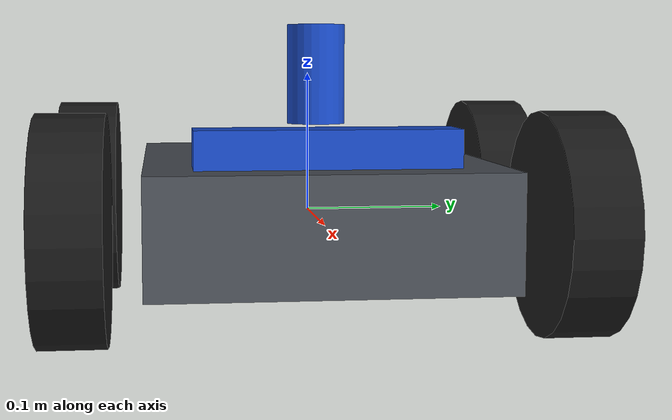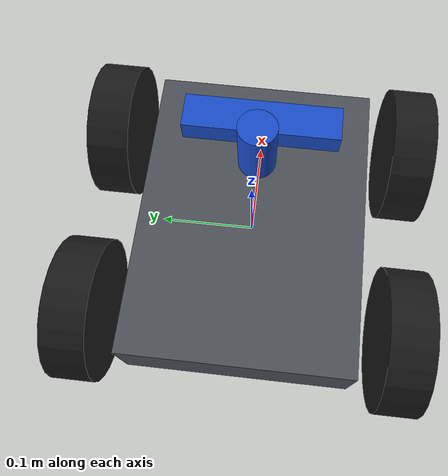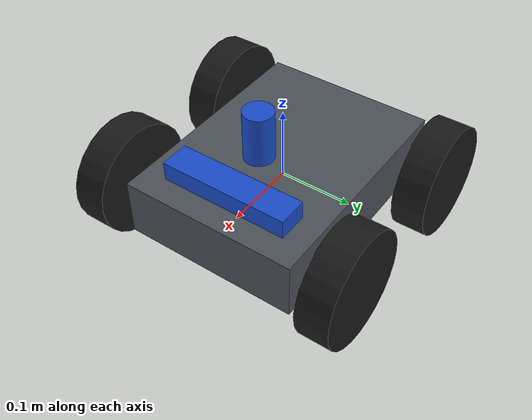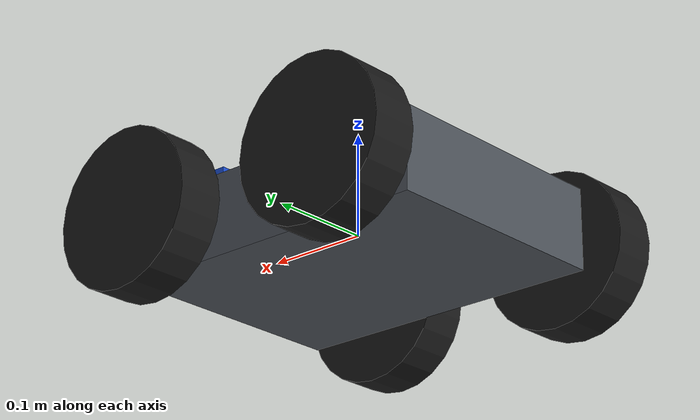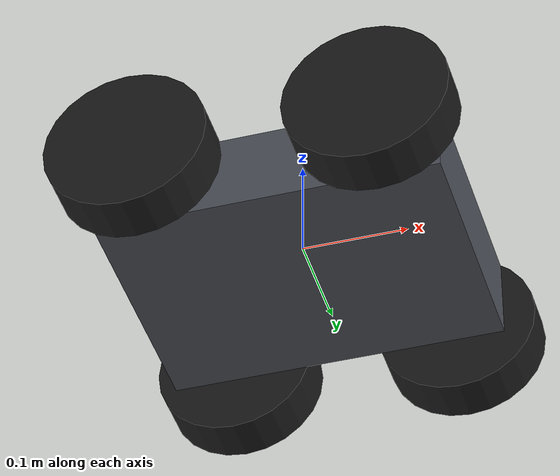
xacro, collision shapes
<?xml version="1.0"?>
<robot name="helios" xmlns:xacro="http://www.ros.org/wiki/xacro">

  <xacro:include filename="$(find helios_description)/urdf/common.xacro"/>
  <xacro:include filename="$(find helios_description)/urdf/base.xacro"/>
  <xacro:include filename="$(find helios_description)/urdf/sensors.xacro"/>

</robot>

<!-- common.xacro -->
<robot xmlns:xacro="http://www.ros.org/wiki/xacro">

  <!-- ===================== Mesh conventions ===================== -->
  <xacro:property name="mesh_scale" value="0.001 0.001 0.001"/>
  <xacro:property name="mesh_rpy"   value="${pi/2} 0 ${pi/2}"/>

  <!-- ===================== Materials ===================== -->
  <material name="chassis_grey"><color rgba="0.30 0.32 0.35 1.0"/></material>
  <material name="wheel_black"><color rgba="0.10 0.10 0.10 1.0"/></material>
  <material name="sensor_blue"><color rgba="0.10 0.30 0.80 1.0"/></material>

</robot>

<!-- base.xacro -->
<robot xmlns:xacro="http://www.ros.org/wiki/xacro">

  <!-- ===================== Parameters ===================== -->
  <xacro:property name="wheel_radius"   value="0.076"/>   <!-- m, 152 mm wheel diameter / 2 -->
  <xacro:property name="wheel_width"    value="0.045"/>   <!-- m, collision cylinder length; estimated, not measured -->
  <xacro:property name="half_wheelbase" value="0.110"/>   <!-- m, front<->rear axle spacing 0.220 / 2 -->
  <xacro:property name="half_track"     value="0.165"/>   <!-- m, left<->right wheel spacing 0.330 / 2 -->

  <!-- Chassis collision box, estimated from the A4WD3 frame. Collision uses a
       box rather than the STL because mesh collision checking costs far more
       and buys nothing at this scale. -->
  <xacro:property name="chassis_length" value="0.320"/>   <!-- m, along x (forward) -->
  <xacro:property name="chassis_width"  value="0.240"/>   <!-- m, along y (left) -->
  <xacro:property name="chassis_height" value="0.0785"/>  <!-- m, along z (up), centred on base_link -->

  <xacro:property name="chassis_mesh_xyz" value="-0.16552 -0.13383 -0.03827"/>
  <xacro:property name="wheelA_mesh_xyz"  value="-0.08398 -0.02833 -0.08436"/>
  <xacro:property name="wheelB_mesh_xyz"  value="-0.08395 -0.02833 -0.08436"/>

  <!-- ===================== base_link (root) ===================== -->
  <link name="base_link">
    <visual>
      <origin xyz="${chassis_mesh_xyz}" rpy="${mesh_rpy}"/>
      <geometry>
        <mesh filename="package://helios_description/meshes/Rover-Chassis.STL" scale="${mesh_scale}"/>
      </geometry>
      <material name="chassis_grey"/>
    </visual>
    <collision>
      <origin xyz="0 0 0" rpy="0 0 0"/>
      <geometry>
        <box size="${chassis_length} ${chassis_width} ${chassis_height}"/>
      </geometry>
    </collision>
  </link>

  <!-- base_link_inertia: KDL doesn't support inertia on the root link, so the
       chassis mass lives here instead (fixed, identity offset from base_link)
       rather than on base_link itself. -->
  <link name="base_link_inertia">
    <inertial>
      <mass value="5.0"/>
      <origin xyz="0 0 0"/>
      <inertia ixx="0.05" ixy="0" ixz="0" iyy="0.08" iyz="0" izz="0.10"/>
    </inertial>
  </link>
  <joint name="base_link_inertia_joint" type="fixed">
    <parent link="base_link"/>
    <child link="base_link_inertia"/>
    <origin xyz="0 0 0" rpy="0 0 0"/>
  </joint>

  <!-- base_footprint: ground projection below base_link (child, so base_link
       keeps a single parent = odom from the odometry node). -->
  <link name="base_footprint"/>
  <joint name="base_footprint_joint" type="fixed">
    <parent link="base_link"/>
    <child link="base_footprint"/>
    <origin xyz="0 0 ${-wheel_radius}" rpy="0 0 0"/>
  </joint>

  <!-- ===================== Wheel macro ===================== -->
  <xacro:macro name="wheel" params="name x y mesh_file mesh_xyz">
    <link name="${name}_wheel">
      <visual>
        <origin xyz="${mesh_xyz}" rpy="${mesh_rpy}"/>
        <geometry>
          <mesh filename="package://helios_description/meshes/${mesh_file}" scale="${mesh_scale}"/>
        </geometry>
        <material name="wheel_black"/>
      </visual>
      <collision>
        <origin xyz="0 0 0" rpy="${pi/2} 0 0"/>
        <geometry>
          <cylinder radius="${wheel_radius}" length="${wheel_width}"/>
        </geometry>
      </collision>
      <inertial>
        <mass value="0.5"/>
        <origin xyz="0 0 0"/>
        <inertia ixx="0.001" ixy="0" ixz="0" iyy="0.001" iyz="0" izz="0.001"/>
      </inertial>
    </link>
    <joint name="${name}_wheel_joint" type="continuous">
      <parent link="base_link"/>
      <child link="${name}_wheel"/>
      <origin xyz="${x} ${y} 0" rpy="0 0 0"/>
      <axis xyz="0 1 0"/>
    </joint>
  </xacro:macro>

  <!-- Corner names match the wheel_odometry node. -->
  <xacro:wheel name="front_left"  x="${half_wheelbase}"  y="${half_track}"
               mesh_file="A4WD3-W-ME-B.STL" mesh_xyz="${wheelA_mesh_xyz}"/>
  <xacro:wheel name="front_right" x="${half_wheelbase}"  y="${-half_track}"
               mesh_file="A4WD3-W-ME-A.STL" mesh_xyz="${wheelB_mesh_xyz}"/>
  <xacro:wheel name="rear_left"   x="${-half_wheelbase}" y="${half_track}"
               mesh_file="A4WD3-W-ME-A.STL" mesh_xyz="${wheelB_mesh_xyz}"/>
  <xacro:wheel name="rear_right"  x="${-half_wheelbase}" y="${-half_track}"
               mesh_file="A4WD3-W-ME-B.STL" mesh_xyz="${wheelA_mesh_xyz}"/>

</robot>

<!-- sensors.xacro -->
<robot xmlns:xacro="http://www.ros.org/wiki/xacro">

  <!-- ===================== ZED 2i ===================== -->
  <link name="zed_camera_link">
    <visual>
      <origin xyz="0.01547 -0.08888 -0.02128" rpy="0 0 ${pi/2}"/>
      <geometry>
        <mesh filename="package://helios_description/meshes/ZED2i.STL" scale="${mesh_scale}"/>
      </geometry>
      <material name="sensor_blue"/>
    </visual>
    <collision>
      <origin xyz="0 0 0" rpy="0 0 0"/>
      <geometry>
        <box size="0.04 0.17525 0.030"/>   <!-- m, ZED 2i body is ~175 mm wide -->
      </geometry>
    </collision>
  </link>
  <joint name="zed_mount_joint" type="fixed">
    <parent link="base_link"/>
    <child link="zed_camera_link"/>
    <origin xyz="0.106 0.0 0.050" rpy="0 0 0"/>
  </joint>

  <!-- ===================== Hokuyo UST-10LX ===================== -->
  <link name="laser">
    <visual>
      <origin xyz="-0.03163 -0.02500 -0.03500" rpy="${mesh_rpy}"/>
      <geometry>
        <mesh filename="package://helios_description/meshes/Hokuyo-UST-10LX-Lidar.STL" scale="${mesh_scale}"/>
      </geometry>
      <material name="sensor_blue"/>
    </visual>
    <collision>
      <origin xyz="0 0 0" rpy="0 0 0"/>
      <geometry>
        <cylinder radius="0.020" length="0.0685"/>   <!-- m, UST-10LX housing is ~50 mm dia -->
      </geometry>
    </collision>
  </link>
  <joint name="laser_mount_joint" type="fixed">
    <parent link="base_link"/>
    <child link="laser"/>
    <origin xyz="0.05 0 0.100" rpy="0 0 0"/>
  </joint>

</robot>
